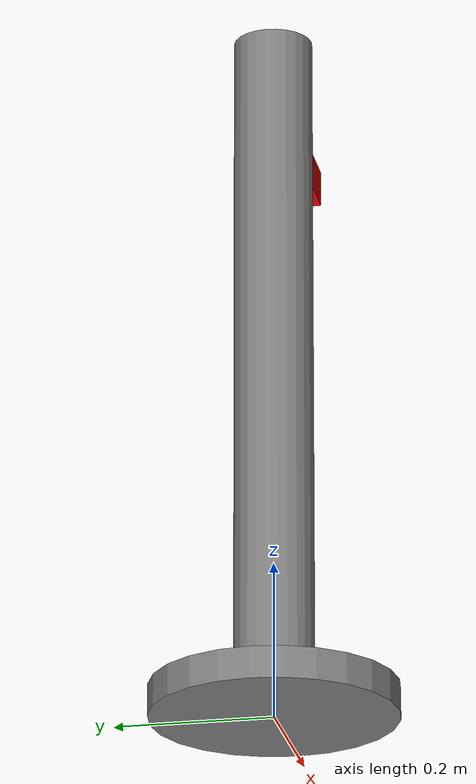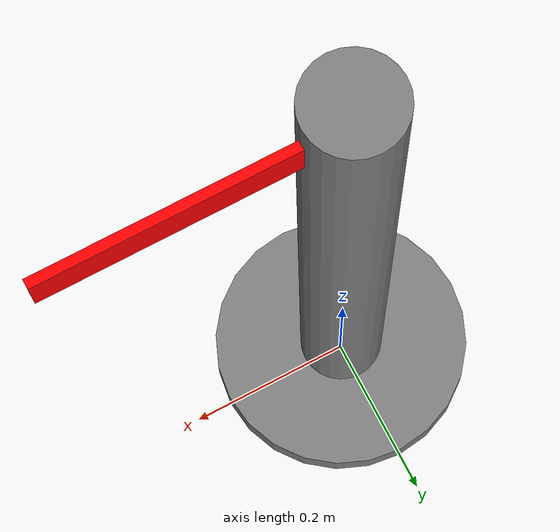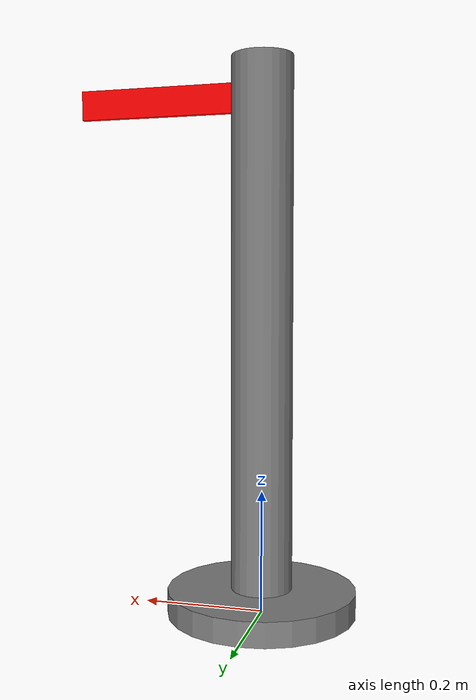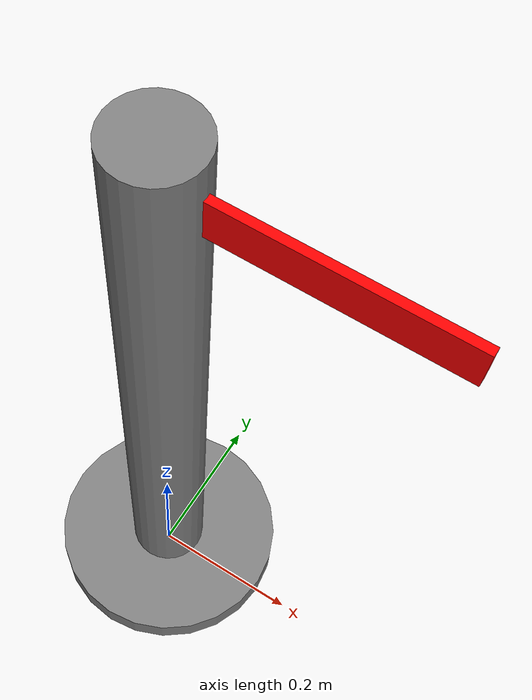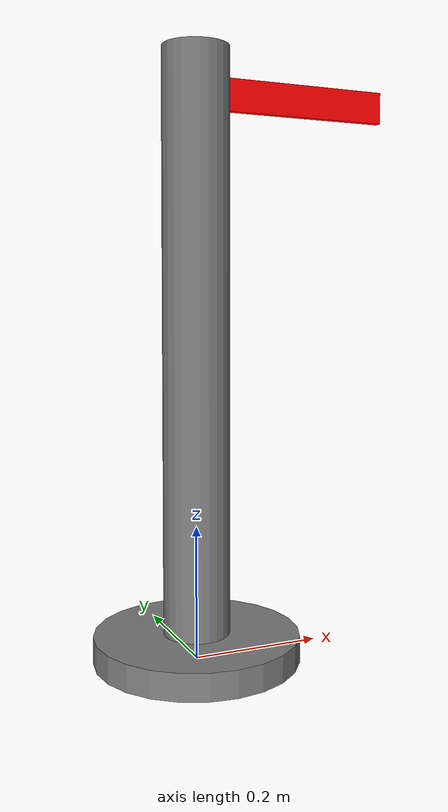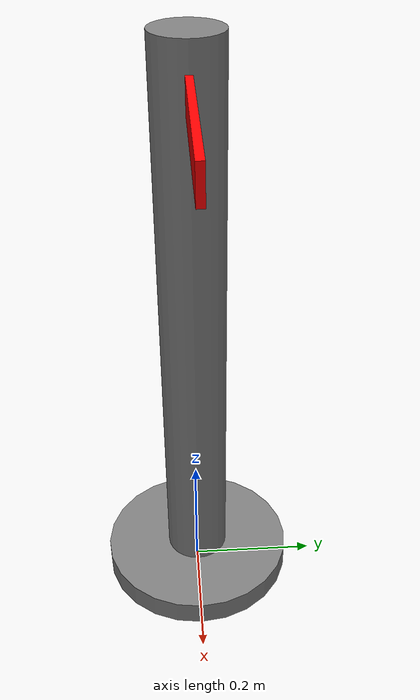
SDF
<?xml version="1.0" ?>
<sdf version='1.6'>
  <model name="barrier_with_belt">
    <static>true</static> <!-- Static model -->

    <!-- Base Plate -->
    <link name="base1">
      <visual name="base1_visual">
        <geometry>
          <cylinder>
            <radius>0.155</radius> <!-- Diameter: 31 cm -->
            <length>0.04</length> <!-- Thickness: 4 cm -->
          </cylinder>
        </geometry>
        <material>
          <ambient>0.5 0.5 0.5 1</ambient> <!-- Grey color -->
        </material>
      </visual>
      <collision name="base1_collision">
        <geometry>
          <cylinder>
            <radius>0.155</radius>
            <length>0.04</length>
          </cylinder>
        </geometry>
      </collision>
      <pose>0 0 0.02 0 0 0</pose> <!-- Base at ground level -->
    </link>

    <!-- Pillar -->
    <link name="cylinder1">
      <visual name="cylinder1_visual">
        <geometry>
          <cylinder>
            <radius>0.05</radius> <!-- Radius: 5 cm -->
            <length>0.89</length> <!-- Height: 89 cm -->
          </cylinder>
        </geometry>
        <material>
          <ambient>0.5 0.5 0.5 1</ambient> <!-- Grey color -->
        </material>
      </visual>
      <collision name="cylinder1_collision">
        <geometry>
          <cylinder>
            <radius>0.05</radius>
            <length>0.89</length>
          </cylinder>
        </geometry>
      </collision>
      <pose>0 0 0.46 0 0 0</pose> <!-- Placed on top of the base -->
    </link>

    <!-- Belt -->
    <link name="tape">
      <visual name="tape_visual">
        <geometry>
          <box>
            <size>0.31 0.048 0.01</size> <!-- Length, Width, Thickness -->
          </box>
        </geometry>
        <material>
          <ambient>1 0 0 1</ambient> <!-- Red color -->
        </material>
      </visual>
      <collision name="tape_collision">
        <geometry>
          <box>
            <size>0.31 0.048 0.01</size>
          </box>
        </geometry>
      </collision>
      <pose>0.155 0 0.84 1.571 0 0</pose> <!-- Aligned with the pillar -->
    </link>

    <!-- Fixed Joints -->
    <joint name="cylinder1_to_base" type="fixed">
      <parent>base1</parent>
      <child>cylinder1</child>
    </joint>
    <joint name="cylinder1_to_tape" type="fixed">
      <parent>cylinder1</parent>
      <child>tape</child>
    </joint>

  </model>
</sdf>
